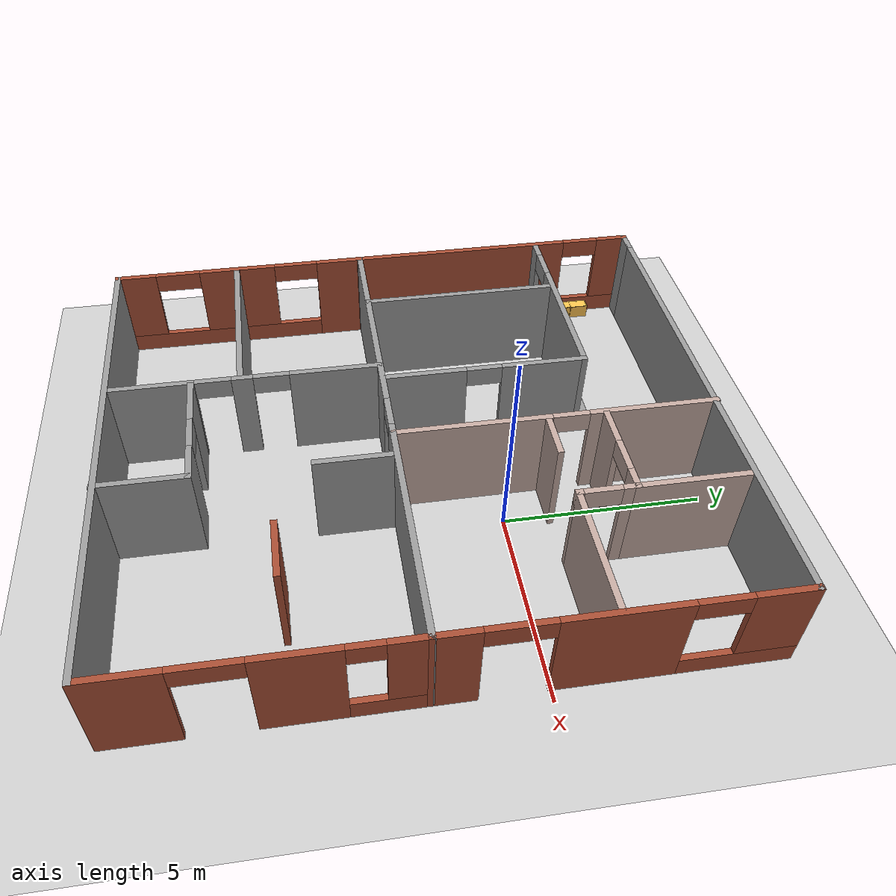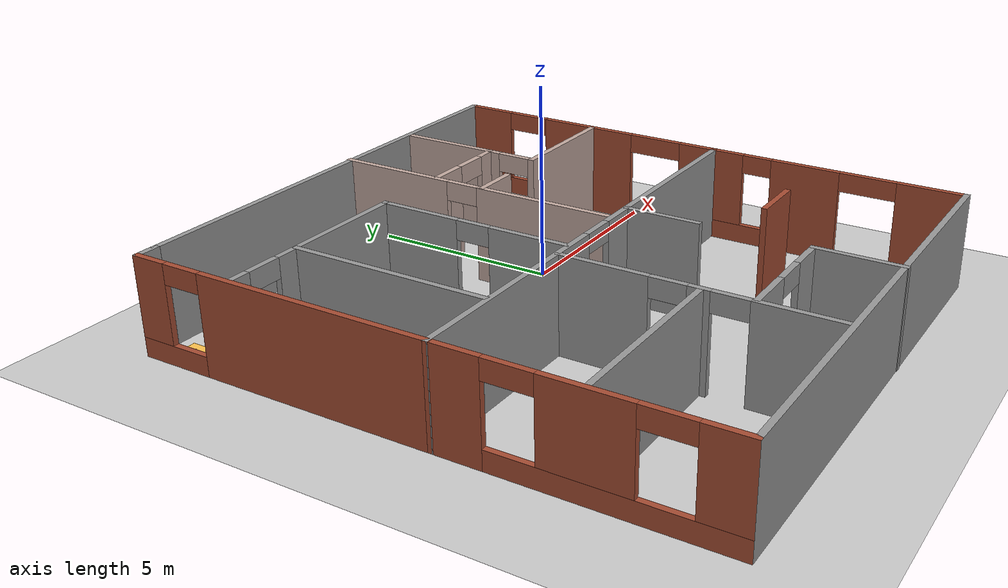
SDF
<sdf version="1.6">
 <world name="default">
  <model name="ground_plane">
   <static>1</static>
   <link name="link">
    <collision name="collision">
     <geometry><plane><normal>0 0 1</normal><size>100 100</size></plane></geometry>
     <surface>
      <contact><collide_bitmask>65535</collide_bitmask></contact>
      <friction><ode><mu>100</mu><mu2>50</mu2></ode></friction>
     </surface>
    </collision>
    <visual name="visual">
     <cast_shadows>0</cast_shadows>
     <geometry><plane><normal>0 0 1</normal><size>100 100</size></plane></geometry>
     <material>
      <script><uri>file://media/materials/scripts/gazebo.material</uri><name>Gazebo/Grey</name></script>
     </material>
    </visual>
   </link>
  </model>
  <model name="floor_plan">
   <pose>-1.7957 -2.03382 -0.009377 0 -0 0</pose>
   <link name="Wall_0">
    <pose>0 -0.539534 0 0 -0 3.14039</pose>
    <visual name="Wall_0_Visual_0">
     <pose>-3.50083 0 1.25 0 -0 0</pose>
     <geometry><box><size>5.99834 0.15 2.5</size></box></geometry>
     <material>
      <script><uri>file://media/materials/scripts/gazebo.material</uri><name>Gazebo/Grey</name></script>
      <ambient>1 1 1 1</ambient>
     </material>
     <meta><layer>0</layer></meta>
    </visual>
    <collision name="Wall_0_Collision_0">
     <geometry><box><size>5.99834 0.15 2.5</size></box></geometry>
     <pose>-3.50083 0 1.25 0 -0 0</pose>
    </collision>
    <visual name="Wall_0_Visual_1">
     <pose>3.44917 0 1.25 0 -0 0</pose>
     <geometry><box><size>6.10166 0.15 2.5</size></box></geometry>
     <material>
      <script><uri>file://media/materials/scripts/gazebo.material</uri><name>Gazebo/Grey</name></script>
      <ambient>1 1 1 1</ambient>
     </material>
     <meta><layer>0</layer></meta>
    </visual>
    <collision name="Wall_0_Collision_1">
     <geometry><box><size>6.10166 0.15 2.5</size></box></geometry>
     <pose>3.44917 0 1.25 0 -0 0</pose>
    </collision>
    <visual name="Wall_0_Visual_2">
     <pose>-0.051658 0 2.25 0 -0 0</pose>
     <geometry><box><size>0.9 0.15 0.5</size></box></geometry>
     <material>
      <script><uri>file://media/materials/scripts/gazebo.material</uri><name>Gazebo/Grey</name></script>
      <ambient>1 1 1 1</ambient>
     </material>
     <meta><layer>0</layer></meta>
    </visual>
    <collision name="Wall_0_Collision_2">
     <geometry><box><size>0.9 0.15 0.5</size></box></geometry>
     <pose>-0.051658 0 2.25 0 -0 0</pose>
    </collision>
   </link>
   <link name="Wall_11">
    <collision name="Wall_11_Collision">
     <geometry><box><size>2 0.15 2.5</size></box></geometry>
     <pose>0 0 1.25 0 -0 0</pose>
    </collision>
    <visual name="Wall_11_Visual">
     <pose>0 0 1.25 0 -0 0</pose>
     <geometry><box><size>2 0.15 2.5</size></box></geometry>
     <material>
      <script><uri>file://media/materials/scripts/gazebo.material</uri><name>Gazebo/Grey</name></script>
      <ambient>1 1 1 1</ambient>
     </material>
     <meta><layer>0</layer></meta>
    </visual>
    <pose>1.48948 -1.49915 0 0 0 -1.5708</pose>
   </link>
   <link name="Wall_13">
    <collision name="Wall_13_Collision">
     <geometry><box><size>1.5 0.15 2.5</size></box></geometry>
     <pose>0 0 1.25 0 -0 0</pose>
    </collision>
    <visual name="Wall_13_Visual">
     <pose>0 0 1.25 0 -0 0</pose>
     <geometry><box><size>1.5 0.15 2.5</size></box></geometry>
     <material>
      <script><uri>file://media/materials/scripts/gazebo.material</uri><name>Gazebo/Bricks</name></script>
      <ambient>1 1 1 1</ambient>
     </material>
     <meta><layer>0</layer></meta>
    </visual>
    <pose>3.82409 -3.40918 0 0 -0 0</pose>
   </link>
   <link name="Wall_15">
    <collision name="Wall_15_Collision">
     <geometry><box><size>4.75 0.15 2.5</size></box></geometry>
     <pose>0 0 1.25 0 -0 0</pose>
    </collision>
    <visual name="Wall_15_Visual">
     <pose>0 0 1.25 0 -0 0</pose>
     <geometry><box><size>4.75 0.15 2.5</size></box></geometry>
     <material>
      <script><uri>file://media/materials/scripts/gazebo.material</uri><name>Gazebo/Grey</name></script>
      <ambient>1 1 1 1</ambient>
     </material>
     <meta><layer>0</layer></meta>
    </visual>
    <pose>-3.97817 -4.0327 0 0 -0 3.14159</pose>
   </link>
   <link name="Wall_2">
    <pose>-6.42506 -3.93398 0 0 0 -1.5708</pose>
    <visual name="Wall_2_Visual_0">
     <pose>-2.80871 0 1.25 0 -0 0</pose>
     <geometry><box><size>1.30653 0.15 2.5</size></box></geometry>
     <material>
      <script><uri>file://media/materials/scripts/gazebo.material</uri><name>Gazebo/Bricks</name></script>
      <ambient>1 1 1 1</ambient>
     </material>
     <meta><layer>0</layer></meta>
    </visual>
    <collision name="Wall_2_Collision_0">
     <geometry><box><size>1.30653 0.15 2.5</size></box></geometry>
     <pose>-2.80871 0 1.25 0 -0 0</pose>
    </collision>
    <visual name="Wall_2_Visual_1">
     <pose>0.653263 0 0.25 0 -0 0</pose>
     <geometry><box><size>5.61743 0.15 0.5</size></box></geometry>
     <material>
      <script><uri>file://media/materials/scripts/gazebo.material</uri><name>Gazebo/Bricks</name></script>
      <ambient>1 1 1 1</ambient>
     </material>
     <meta><layer>0</layer></meta>
    </visual>
    <collision name="Wall_2_Collision_1">
     <geometry><box><size>5.61743 0.15 0.5</size></box></geometry>
     <pose>0.653263 0 0.25 0 -0 0</pose>
    </collision>
    <visual name="Wall_2_Visual_2">
     <pose>0.095441 0 1.5 0 -0 0</pose>
     <geometry><box><size>2.10179 0.15 2</size></box></geometry>
     <material>
      <script><uri>file://media/materials/scripts/gazebo.material</uri><name>Gazebo/Bricks</name></script>
      <ambient>1 1 1 1</ambient>
     </material>
     <meta><layer>0</layer></meta>
    </visual>
    <collision name="Wall_2_Collision_2">
     <geometry><box><size>2.10179 0.15 2</size></box></geometry>
     <pose>0.095441 0 1.5 0 -0 0</pose>
    </collision>
    <visual name="Wall_2_Visual_3">
     <pose>2.90416 0 1.5 0 -0 0</pose>
     <geometry><box><size>1.11564 0.15 2</size></box></geometry>
     <material>
      <script><uri>file://media/materials/scripts/gazebo.material</uri><name>Gazebo/Bricks</name></script>
      <ambient>1 1 1 1</ambient>
     </material>
     <meta><layer>0</layer></meta>
    </visual>
    <collision name="Wall_2_Collision_3">
     <geometry><box><size>1.11564 0.15 2</size></box></geometry>
     <pose>2.90416 0 1.5 0 -0 0</pose>
    </collision>
    <visual name="Wall_2_Visual_4">
     <pose>-1.55545 0 2.25 0 -0 0</pose>
     <geometry><box><size>1.2 0.15 0.5</size></box></geometry>
     <material>
      <script><uri>file://media/materials/scripts/gazebo.material</uri><name>Gazebo/Bricks</name></script>
      <ambient>1 1 1 1</ambient>
     </material>
     <meta><layer>0</layer></meta>
    </visual>
    <collision name="Wall_2_Collision_4">
     <geometry><box><size>1.2 0.15 0.5</size></box></geometry>
     <pose>-1.55545 0 2.25 0 -0 0</pose>
    </collision>
    <visual name="Wall_2_Visual_5">
     <pose>1.74633 0 2.25 0 -0 0</pose>
     <geometry><box><size>1.2 0.15 0.5</size></box></geometry>
     <material>
      <script><uri>file://media/materials/scripts/gazebo.material</uri><name>Gazebo/Bricks</name></script>
      <ambient>1 1 1 1</ambient>
     </material>
     <meta><layer>0</layer></meta>
    </visual>
    <collision name="Wall_2_Collision_5">
     <geometry><box><size>1.2 0.15 0.5</size></box></geometry>
     <pose>1.74633 0 2.25 0 -0 0</pose>
    </collision>
   </link>
   <link name="Wall_3">
    <collision name="Wall_3_Collision">
     <geometry><box><size>13 0.15 2.5</size></box></geometry>
     <pose>0 0 1.25 0 -0 0</pose>
    </collision>
    <visual name="Wall_3_Visual">
     <pose>0 0 1.25 0 -0 0</pose>
     <geometry><box><size>13 0.15 2.5</size></box></geometry>
     <material>
      <script><uri>file://media/materials/scripts/gazebo.material</uri><name>Gazebo/Grey</name></script>
      <ambient>1 1 1 1</ambient>
     </material>
     <meta><layer>0</layer></meta>
    </visual>
    <pose>0 -7.32112 0 0 0 -2.4e-05</pose>
   </link>
   <link name="Wall_36">
    <pose>-1.17934 2.06051 0 0 -0 1.5708</pose>
    <visual name="Wall_36_Visual_0">
     <pose>-1.55306 0 1.25 0 -0 0</pose>
     <geometry><box><size>2.14389 0.15 2.5</size></box></geometry>
     <material>
      <script><uri>file://media/materials/scripts/gazebo.material</uri><name>Gazebo/Grey</name></script>
      <ambient>1 1 1 1</ambient>
     </material>
     <meta><layer>0</layer></meta>
    </visual>
    <collision name="Wall_36_Collision_0">
     <geometry><box><size>2.14389 0.15 2.5</size></box></geometry>
     <pose>-1.55306 0 1.25 0 -0 0</pose>
    </collision>
    <visual name="Wall_36_Visual_1">
     <pose>1.52195 0 1.25 0 -0 0</pose>
     <geometry><box><size>2.20611 0.15 2.5</size></box></geometry>
     <material>
      <script><uri>file://media/materials/scripts/gazebo.material</uri><name>Gazebo/Grey</name></script>
      <ambient>1 1 1 1</ambient>
     </material>
     <meta><layer>0</layer></meta>
    </visual>
    <collision name="Wall_36_Collision_1">
     <geometry><box><size>2.20611 0.15 2.5</size></box></geometry>
     <pose>1.52195 0 1.25 0 -0 0</pose>
    </collision>
    <visual name="Wall_36_Visual_2">
     <pose>-0.031111 0 2.25 0 -0 0</pose>
     <geometry><box><size>0.9 0.15 0.5</size></box></geometry>
     <material>
      <script><uri>file://media/materials/scripts/gazebo.material</uri><name>Gazebo/Grey</name></script>
      <ambient>1 1 1 1</ambient>
     </material>
     <meta><layer>0</layer></meta>
    </visual>
    <collision name="Wall_36_Collision_2">
     <geometry><box><size>0.9 0.15 0.5</size></box></geometry>
     <pose>-0.031111 0 2.25 0 -0 0</pose>
    </collision>
   </link>
   <link name="Wall_37">
    <pose>-3.72933 4.61051 0 0 -0 3.14159</pose>
    <visual name="Wall_37_Visual_0">
     <pose>-0.694741 0 1.25 0 -0 0</pose>
     <geometry><box><size>3.86052 0.15 2.5</size></box></geometry>
     <material>
      <script><uri>file://media/materials/scripts/gazebo.material</uri><name>Gazebo/Grey</name></script>
      <ambient>1 1 1 1</ambient>
     </material>
     <meta><layer>0</layer></meta>
    </visual>
    <collision name="Wall_37_Collision_0">
     <geometry><box><size>3.86052 0.15 2.5</size></box></geometry>
     <pose>-0.694741 0 1.25 0 -0 0</pose>
    </collision>
    <visual name="Wall_37_Visual_1">
     <pose>2.38026 0 1.25 0 -0 0</pose>
     <geometry><box><size>0.489482 0.15 2.5</size></box></geometry>
     <material>
      <script><uri>file://media/materials/scripts/gazebo.material</uri><name>Gazebo/Grey</name></script>
      <ambient>1 1 1 1</ambient>
     </material>
     <meta><layer>0</layer></meta>
    </visual>
    <collision name="Wall_37_Collision_1">
     <geometry><box><size>0.489482 0.15 2.5</size></box></geometry>
     <pose>2.38026 0 1.25 0 -0 0</pose>
    </collision>
    <visual name="Wall_37_Visual_2">
     <pose>1.68552 0 2.25 0 -0 0</pose>
     <geometry><box><size>0.9 0.15 0.5</size></box></geometry>
     <material>
      <script><uri>file://media/materials/scripts/gazebo.material</uri><name>Gazebo/Grey</name></script>
      <ambient>1 1 1 1</ambient>
     </material>
     <meta><layer>0</layer></meta>
    </visual>
    <collision name="Wall_37_Collision_2">
     <geometry><box><size>0.9 0.15 0.5</size></box></geometry>
     <pose>1.68552 0 2.25 0 -0 0</pose>
    </collision>
   </link>
   <link name="Wall_39">
    <collision name="Wall_39_Collision">
     <geometry><box><size>5.25 0.15 2.5</size></box></geometry>
     <pose>0 0 1.25 0 -0 0</pose>
    </collision>
    <visual name="Wall_39_Visual">
     <pose>0 0 1.25 0 -0 0</pose>
     <geometry><box><size>5.25 0.15 2.5</size></box></geometry>
     <material>
      <script><uri>file://media/materials/scripts/gazebo.material</uri><name>Gazebo/Grey</name></script>
      <ambient>1 1 1 1</ambient>
     </material>
     <meta><layer>0</layer></meta>
    </visual>
    <pose>-4.34796 2.03294 0 0 0 -1.5708</pose>
   </link>
   <link name="Wall_4">
    <pose>6.42506 -3.93427 0 0 -0 1.5708</pose>
    <visual name="Wall_4_Visual_0">
     <pose>-2.56147 0 1.25 0 -0 0</pose>
     <geometry><box><size>1.80105 0.15 2.5</size></box></geometry>
     <material>
      <script><uri>file://media/materials/scripts/gazebo.material</uri><name>Gazebo/Bricks</name></script>
      <ambient>1 1 1 1</ambient>
     </material>
     <meta><layer>0</layer></meta>
    </visual>
    <collision name="Wall_4_Collision_0">
     <geometry><box><size>1.80105 0.15 2.5</size></box></geometry>
     <pose>-2.56147 0 1.25 0 -0 0</pose>
    </collision>
    <visual name="Wall_4_Visual_1">
     <pose>0.775723 0 1.25 0 -0 0</pose>
     <geometry><box><size>1.87334 0.15 2.5</size></box></geometry>
     <material>
      <script><uri>file://media/materials/scripts/gazebo.material</uri><name>Gazebo/Bricks</name></script>
      <ambient>1 1 1 1</ambient>
     </material>
     <meta><layer>0</layer></meta>
    </visual>
    <collision name="Wall_4_Collision_1">
     <geometry><box><size>1.87334 0.15 2.5</size></box></geometry>
     <pose>0.775723 0 1.25 0 -0 0</pose>
    </collision>
    <visual name="Wall_4_Visual_2">
     <pose>2.5872 0 0.25 0 -0 0</pose>
     <geometry><box><size>1.74961 0.15 0.5</size></box></geometry>
     <material>
      <script><uri>file://media/materials/scripts/gazebo.material</uri><name>Gazebo/Bricks</name></script>
      <ambient>1 1 1 1</ambient>
     </material>
     <meta><layer>0</layer></meta>
    </visual>
    <collision name="Wall_4_Collision_2">
     <geometry><box><size>1.74961 0.15 0.5</size></box></geometry>
     <pose>2.5872 0 0.25 0 -0 0</pose>
    </collision>
    <visual name="Wall_4_Visual_3">
     <pose>2.9872 0 1.5 0 -0 0</pose>
     <geometry><box><size>0.949605 0.15 2</size></box></geometry>
     <material>
      <script><uri>file://media/materials/scripts/gazebo.material</uri><name>Gazebo/Bricks</name></script>
      <ambient>1 1 1 1</ambient>
     </material>
     <meta><layer>0</layer></meta>
    </visual>
    <collision name="Wall_4_Collision_3">
     <geometry><box><size>0.949605 0.15 2</size></box></geometry>
     <pose>2.9872 0 1.5 0 -0 0</pose>
    </collision>
    <visual name="Wall_4_Visual_4">
     <pose>-0.910948 0 2.25 0 -0 0</pose>
     <geometry><box><size>1.5 0.15 0.5</size></box></geometry>
     <material>
      <script><uri>file://media/materials/scripts/gazebo.material</uri><name>Gazebo/Bricks</name></script>
      <ambient>1 1 1 1</ambient>
     </material>
     <meta><layer>0</layer></meta>
    </visual>
    <collision name="Wall_4_Collision_4">
     <geometry><box><size>1.5 0.15 0.5</size></box></geometry>
     <pose>-0.910948 0 2.25 0 -0 0</pose>
    </collision>
    <visual name="Wall_4_Visual_5">
     <pose>2.11239 0 2.25 0 -0 0</pose>
     <geometry><box><size>0.8 0.15 0.5</size></box></geometry>
     <material>
      <script><uri>file://media/materials/scripts/gazebo.material</uri><name>Gazebo/Bricks</name></script>
      <ambient>1 1 1 1</ambient>
     </material>
     <meta><layer>0</layer></meta>
    </visual>
    <collision name="Wall_4_Collision_5">
     <geometry><box><size>0.8 0.15 0.5</size></box></geometry>
     <pose>2.11239 0 2.25 0 -0 0</pose>
    </collision>
   </link>
   <link name="Wall_45">
    <pose>6.425 3.37786 0 0 -0 1.57081</pose>
    <visual name="Wall_45_Visual_0">
     <pose>-3.45923 0 1.25 0 -0 0</pose>
     <geometry><box><size>1.08155 0.15 2.5</size></box></geometry>
     <material>
      <script><uri>file://media/materials/scripts/gazebo.material</uri><name>Gazebo/Bricks</name></script>
      <ambient>1 1 1 1</ambient>
     </material>
     <meta><layer>0</layer></meta>
    </visual>
    <collision name="Wall_45_Collision_0">
     <geometry><box><size>1.08155 0.15 2.5</size></box></geometry>
     <pose>-3.45923 0 1.25 0 -0 0</pose>
    </collision>
    <visual name="Wall_45_Visual_1">
     <pose>-0.023066 0 1.25 0 -0 0</pose>
     <geometry><box><size>2.79077 0.15 2.5</size></box></geometry>
     <material>
      <script><uri>file://media/materials/scripts/gazebo.material</uri><name>Gazebo/Bricks</name></script>
      <ambient>1 1 1 1</ambient>
     </material>
     <meta><layer>0</layer></meta>
    </visual>
    <collision name="Wall_45_Collision_1">
     <geometry><box><size>2.79077 0.15 2.5</size></box></geometry>
     <pose>-0.023066 0 1.25 0 -0 0</pose>
    </collision>
    <visual name="Wall_45_Visual_2">
     <pose>2.68616 0 0.25 0 -0 0</pose>
     <geometry><box><size>2.62768 0.15 0.5</size></box></geometry>
     <material>
      <script><uri>file://media/materials/scripts/gazebo.material</uri><name>Gazebo/Bricks</name></script>
      <ambient>1 1 1 1</ambient>
     </material>
     <meta><layer>0</layer></meta>
    </visual>
    <collision name="Wall_45_Collision_2">
     <geometry><box><size>2.62768 0.15 0.5</size></box></geometry>
     <pose>2.68616 0 0.25 0 -0 0</pose>
    </collision>
    <visual name="Wall_45_Visual_3">
     <pose>3.28616 0 1.5 0 -0 0</pose>
     <geometry><box><size>1.42768 0.15 2</size></box></geometry>
     <material>
      <script><uri>file://media/materials/scripts/gazebo.material</uri><name>Gazebo/Bricks</name></script>
      <ambient>1 1 1 1</ambient>
     </material>
     <meta><layer>0</layer></meta>
    </visual>
    <collision name="Wall_45_Collision_3">
     <geometry><box><size>1.42768 0.15 2</size></box></geometry>
     <pose>3.28616 0 1.5 0 -0 0</pose>
    </collision>
    <visual name="Wall_45_Visual_4">
     <pose>-2.16845 0 2.25 0 -0 0</pose>
     <geometry><box><size>1.5 0.15 0.5</size></box></geometry>
     <material>
      <script><uri>file://media/materials/scripts/gazebo.material</uri><name>Gazebo/Bricks</name></script>
      <ambient>1 1 1 1</ambient>
     </material>
     <meta><layer>0</layer></meta>
    </visual>
    <collision name="Wall_45_Collision_4">
     <geometry><box><size>1.5 0.15 0.5</size></box></geometry>
     <pose>-2.16845 0 2.25 0 -0 0</pose>
    </collision>
    <visual name="Wall_45_Visual_5">
     <pose>1.97232 0 2.25 0 -0 0</pose>
     <geometry><box><size>1.2 0.15 0.5</size></box></geometry>
     <material>
      <script><uri>file://media/materials/scripts/gazebo.material</uri><name>Gazebo/Bricks</name></script>
      <ambient>1 1 1 1</ambient>
     </material>
     <meta><layer>0</layer></meta>
    </visual>
    <collision name="Wall_45_Collision_5">
     <geometry><box><size>1.2 0.15 0.5</size></box></geometry>
     <pose>1.97232 0 2.25 0 -0 0</pose>
    </collision>
   </link>
   <link name="Wall_46">
    <collision name="Wall_46_Collision">
     <geometry><box><size>12.5 0.15 2.5</size></box></geometry>
     <pose>0 0 1.25 0 -0 0</pose>
    </collision>
    <visual name="Wall_46_Visual">
     <pose>0 0 1.25 0 -0 0</pose>
     <geometry><box><size>12.5 0.15 2.5</size></box></geometry>
     <material>
      <script><uri>file://media/materials/scripts/gazebo.material</uri><name>Gazebo/Grey</name></script>
      <ambient>1 1 1 1</ambient>
     </material>
     <meta><layer>0</layer></meta>
    </visual>
    <pose>0.249944 7.303 0 0 -0 3.14159</pose>
   </link>
   <link name="Wall_48">
    <pose>-6.42506 3.378 0 0 -0 1.5708</pose>
    <visual name="Wall_48_Visual_0">
     <pose>-0.956686 0 1.25 0 -0 0</pose>
     <geometry><box><size>6.08663 0.15 2.5</size></box></geometry>
     <material>
      <script><uri>file://media/materials/scripts/gazebo.material</uri><name>Gazebo/Bricks</name></script>
      <ambient>1 1 1 1</ambient>
     </material>
     <meta><layer>0</layer></meta>
    </visual>
    <collision name="Wall_48_Collision_0">
     <geometry><box><size>6.08663 0.15 2.5</size></box></geometry>
     <pose>-0.956686 0 1.25 0 -0 0</pose>
    </collision>
    <visual name="Wall_48_Visual_1">
     <pose>3.04331 0 0.25 0 -0 0</pose>
     <geometry><box><size>1.91337 0.15 0.5</size></box></geometry>
     <material>
      <script><uri>file://media/materials/scripts/gazebo.material</uri><name>Gazebo/Bricks</name></script>
      <ambient>1 1 1 1</ambient>
     </material>
     <meta><layer>0</layer></meta>
    </visual>
    <collision name="Wall_48_Collision_1">
     <geometry><box><size>1.91337 0.15 0.5</size></box></geometry>
     <pose>3.04331 0 0.25 0 -0 0</pose>
    </collision>
    <visual name="Wall_48_Visual_2">
     <pose>3.54331 0 1.5 0 -0 0</pose>
     <geometry><box><size>0.913372 0.15 2</size></box></geometry>
     <material>
      <script><uri>file://media/materials/scripts/gazebo.material</uri><name>Gazebo/Bricks</name></script>
      <ambient>1 1 1 1</ambient>
     </material>
     <meta><layer>0</layer></meta>
    </visual>
    <collision name="Wall_48_Collision_2">
     <geometry><box><size>0.913372 0.15 2</size></box></geometry>
     <pose>3.54331 0 1.5 0 -0 0</pose>
    </collision>
    <visual name="Wall_48_Visual_3">
     <pose>2.58663 0 2.25 0 -0 0</pose>
     <geometry><box><size>1 0.15 0.5</size></box></geometry>
     <material>
      <script><uri>file://media/materials/scripts/gazebo.material</uri><name>Gazebo/Bricks</name></script>
      <ambient>1 1 1 1</ambient>
     </material>
     <meta><layer>0</layer></meta>
    </visual>
    <collision name="Wall_48_Collision_3">
     <geometry><box><size>1 0.15 0.5</size></box></geometry>
     <pose>2.58663 0 2.25 0 -0 0</pose>
    </collision>
   </link>
   <link name="Wall_49">
    <collision name="Wall_49_Collision">
     <geometry><box><size>0.65 0.15 2.5</size></box></geometry>
     <pose>0 0 1.25 0 -0 0</pose>
    </collision>
    <visual name="Wall_49_Visual">
     <pose>0 0 1.25 0 -0 0</pose>
     <geometry><box><size>0.65 0.15 2.5</size></box></geometry>
     <material>
      <script><uri>file://media/materials/scripts/gazebo.material</uri><name>Gazebo/Grey</name></script>
      <ambient>1 1 1 1</ambient>
     </material>
     <meta><layer>0</layer></meta>
    </visual>
    <pose>-6.17506 7.303 0 0 -0 0</pose>
   </link>
   <link name="Wall_51">
    <pose>0.800151 3.41451 0 0 -0 1.5708</pose>
    <visual name="Wall_51_Visual_0">
     <pose>-2.06358 0 1.25 0 -0 0</pose>
     <geometry><box><size>3.87284 0.15 2.5</size></box></geometry>
     <material>
      <script><uri>file://media/materials/scripts/gazebo.material</uri><name>Gazebo/Grey</name></script>
      <ambient>0.760784 0.662745 0.627451 1</ambient>
     </material>
     <meta><layer>0</layer></meta>
    </visual>
    <collision name="Wall_51_Collision_0">
     <geometry><box><size>3.87284 0.15 2.5</size></box></geometry>
     <pose>-2.06358 0 1.25 0 -0 0</pose>
    </collision>
    <visual name="Wall_51_Visual_1">
     <pose>2.38642 0 1.25 0 -0 0</pose>
     <geometry><box><size>3.22716 0.15 2.5</size></box></geometry>
     <material>
      <script><uri>file://media/materials/scripts/gazebo.material</uri><name>Gazebo/Grey</name></script>
      <ambient>0.760784 0.662745 0.627451 1</ambient>
     </material>
     <meta><layer>0</layer></meta>
    </visual>
    <collision name="Wall_51_Collision_1">
     <geometry><box><size>3.22716 0.15 2.5</size></box></geometry>
     <pose>2.38642 0 1.25 0 -0 0</pose>
    </collision>
    <visual name="Wall_51_Visual_2">
     <pose>0.322836 0 2.25 0 -0 0</pose>
     <geometry><box><size>0.9 0.15 0.5</size></box></geometry>
     <material>
      <script><uri>file://media/materials/scripts/gazebo.material</uri><name>Gazebo/Grey</name></script>
      <ambient>0.760784 0.662745 0.627451 1</ambient>
     </material>
     <meta><layer>0</layer></meta>
    </visual>
    <collision name="Wall_51_Collision_2">
     <geometry><box><size>0.9 0.15 0.5</size></box></geometry>
     <pose>0.322836 0 2.25 0 -0 0</pose>
    </collision>
   </link>
   <link name="Wall_53">
    <pose>2.06768 4.57778 0 0 -0 0</pose>
    <visual name="Wall_53_Visual_0">
     <pose>-0.747106 0 1.25 0 -0 0</pose>
     <geometry><box><size>1.00579 0.15 2.5</size></box></geometry>
     <material>
      <script><uri>file://media/materials/scripts/gazebo.material</uri><name>Gazebo/Grey</name></script>
      <ambient>0.760784 0.662745 0.627451 1</ambient>
     </material>
     <meta><layer>0</layer></meta>
    </visual>
    <collision name="Wall_53_Collision_0">
     <geometry><box><size>1.00579 0.15 2.5</size></box></geometry>
     <pose>-0.747106 0 1.25 0 -0 0</pose>
    </collision>
    <visual name="Wall_53_Visual_1">
     <pose>0.952894 0 1.25 0 -0 0</pose>
     <geometry><box><size>0.594213 0.15 2.5</size></box></geometry>
     <material>
      <script><uri>file://media/materials/scripts/gazebo.material</uri><name>Gazebo/Grey</name></script>
      <ambient>0.760784 0.662745 0.627451 1</ambient>
     </material>
     <meta><layer>0</layer></meta>
    </visual>
    <collision name="Wall_53_Collision_1">
     <geometry><box><size>0.594213 0.15 2.5</size></box></geometry>
     <pose>0.952894 0 1.25 0 -0 0</pose>
    </collision>
    <visual name="Wall_53_Visual_2">
     <pose>0.205787 0 2.25 0 -0 0</pose>
     <geometry><box><size>0.9 0.15 0.5</size></box></geometry>
     <material>
      <script><uri>file://media/materials/scripts/gazebo.material</uri><name>Gazebo/Grey</name></script>
      <ambient>0.760784 0.662745 0.627451 1</ambient>
     </material>
     <meta><layer>0</layer></meta>
    </visual>
    <collision name="Wall_53_Collision_2">
     <geometry><box><size>0.9 0.15 0.5</size></box></geometry>
     <pose>0.205787 0 2.25 0 -0 0</pose>
    </collision>
   </link>
   <link name="Wall_54">
    <collision name="Wall_54_Collision">
     <geometry><box><size>2.75 0.15 2.5</size></box></geometry>
     <pose>0 0 1.25 0 -0 0</pose>
    </collision>
    <visual name="Wall_54_Visual">
     <pose>0 0 1.25 0 -0 0</pose>
     <geometry><box><size>2.75 0.15 2.5</size></box></geometry>
     <material>
      <script><uri>file://media/materials/scripts/gazebo.material</uri><name>Gazebo/Grey</name></script>
      <ambient>0.760784 0.662745 0.627451 1</ambient>
     </material>
     <meta><layer>0</layer></meta>
    </visual>
    <pose>3.24268 5.87778 0 0 -0 1.5708</pose>
   </link>
   <link name="Wall_56">
    <pose>3.24268 3.90278 0 0 0 -1.5708</pose>
    <visual name="Wall_56_Visual_0">
     <pose>-0.543058 0 1.25 0 -0 0</pose>
     <geometry><box><size>0.413884 0.15 2.5</size></box></geometry>
     <material>
      <script><uri>file://media/materials/scripts/gazebo.material</uri><name>Gazebo/Grey</name></script>
      <ambient>0.760784 0.662745 0.627451 1</ambient>
     </material>
     <meta><layer>0</layer></meta>
    </visual>
    <collision name="Wall_56_Collision_0">
     <geometry><box><size>0.413884 0.15 2.5</size></box></geometry>
     <pose>-0.543058 0 1.25 0 -0 0</pose>
    </collision>
    <visual name="Wall_56_Visual_1">
     <pose>0.656942 0 1.25 0 -0 0</pose>
     <geometry><box><size>0.186116 0.15 2.5</size></box></geometry>
     <material>
      <script><uri>file://media/materials/scripts/gazebo.material</uri><name>Gazebo/Grey</name></script>
      <ambient>0.760784 0.662745 0.627451 1</ambient>
     </material>
     <meta><layer>0</layer></meta>
    </visual>
    <collision name="Wall_56_Collision_1">
     <geometry><box><size>0.186116 0.15 2.5</size></box></geometry>
     <pose>0.656942 0 1.25 0 -0 0</pose>
    </collision>
    <visual name="Wall_56_Visual_2">
     <pose>0.113884 0 2.25 0 -0 0</pose>
     <geometry><box><size>0.9 0.15 0.5</size></box></geometry>
     <material>
      <script><uri>file://media/materials/scripts/gazebo.material</uri><name>Gazebo/Grey</name></script>
      <ambient>0.760784 0.662745 0.627451 1</ambient>
     </material>
     <meta><layer>0</layer></meta>
    </visual>
    <collision name="Wall_56_Collision_2">
     <geometry><box><size>0.9 0.15 0.5</size></box></geometry>
     <pose>0.113884 0 2.25 0 -0 0</pose>
    </collision>
   </link>
   <link name="Wall_57">
    <collision name="Wall_57_Collision">
     <geometry><box><size>3.25 0.15 2.5</size></box></geometry>
     <pose>0 0 1.25 0 -0 0</pose>
    </collision>
    <visual name="Wall_57_Visual">
     <pose>0 0 1.25 0 -0 0</pose>
     <geometry><box><size>3.25 0.15 2.5</size></box></geometry>
     <material>
      <script><uri>file://media/materials/scripts/gazebo.material</uri><name>Gazebo/Grey</name></script>
      <ambient>0.760784 0.662745 0.627451 1</ambient>
     </material>
     <meta><layer>0</layer></meta>
    </visual>
    <pose>4.79268 3.22778 0 0 -0 0</pose>
   </link>
   <link name="Wall_59">
    <collision name="Wall_59_Collision">
     <geometry><box><size>1.25 0.15 2.5</size></box></geometry>
     <pose>0 0 1.25 0 -0 0</pose>
    </collision>
    <visual name="Wall_59_Visual">
     <pose>0 0 1.25 0 -0 0</pose>
     <geometry><box><size>1.25 0.15 2.5</size></box></geometry>
     <material>
      <script><uri>file://media/materials/scripts/gazebo.material</uri><name>Gazebo/Grey</name></script>
      <ambient>0.760784 0.662745 0.627451 1</ambient>
     </material>
     <meta><layer>0</layer></meta>
    </visual>
    <pose>1.382 3.16183 0 0 -0 0</pose>
   </link>
   <link name="Wall_6">
    <pose>-1.67816 -3.87415 0 0 0 -1.5708</pose>
    <visual name="Wall_6_Visual_0">
     <pose>-2.21563 0 1.25 0 -0 0</pose>
     <geometry><box><size>2.31875 0.15 2.5</size></box></geometry>
     <material>
      <script><uri>file://media/materials/scripts/gazebo.material</uri><name>Gazebo/Grey</name></script>
      <ambient>1 1 1 1</ambient>
     </material>
     <meta><layer>0</layer></meta>
    </visual>
    <collision name="Wall_6_Collision_0">
     <geometry><box><size>2.31875 0.15 2.5</size></box></geometry>
     <pose>-2.21563 0 1.25 0 -0 0</pose>
    </collision>
    <visual name="Wall_6_Visual_1">
     <pose>0.110792 0 1.25 0 -0 0</pose>
     <geometry><box><size>0.534083 0.15 2.5</size></box></geometry>
     <material>
      <script><uri>file://media/materials/scripts/gazebo.material</uri><name>Gazebo/Grey</name></script>
      <ambient>1 1 1 1</ambient>
     </material>
     <meta><layer>0</layer></meta>
    </visual>
    <collision name="Wall_6_Collision_1">
     <geometry><box><size>0.534083 0.15 2.5</size></box></geometry>
     <pose>0.110792 0 1.25 0 -0 0</pose>
    </collision>
    <visual name="Wall_6_Visual_2">
     <pose>2.32642 0 1.25 0 -0 0</pose>
     <geometry><box><size>2.09717 0.15 2.5</size></box></geometry>
     <material>
      <script><uri>file://media/materials/scripts/gazebo.material</uri><name>Gazebo/Grey</name></script>
      <ambient>1 1 1 1</ambient>
     </material>
     <meta><layer>0</layer></meta>
    </visual>
    <collision name="Wall_6_Collision_2">
     <geometry><box><size>2.09717 0.15 2.5</size></box></geometry>
     <pose>2.32642 0 1.25 0 -0 0</pose>
    </collision>
    <visual name="Wall_6_Visual_3">
     <pose>-0.60625 0 2.25 0 -0 0</pose>
     <geometry><box><size>0.9 0.15 0.5</size></box></geometry>
     <material>
      <script><uri>file://media/materials/scripts/gazebo.material</uri><name>Gazebo/Grey</name></script>
      <ambient>1 1 1 1</ambient>
     </material>
     <meta><layer>0</layer></meta>
    </visual>
    <collision name="Wall_6_Collision_3">
     <geometry><box><size>0.9 0.15 0.5</size></box></geometry>
     <pose>-0.60625 0 2.25 0 -0 0</pose>
    </collision>
    <visual name="Wall_6_Visual_4">
     <pose>0.827833 0 2.25 0 -0 0</pose>
     <geometry><box><size>0.9 0.15 0.5</size></box></geometry>
     <material>
      <script><uri>file://media/materials/scripts/gazebo.material</uri><name>Gazebo/Grey</name></script>
      <ambient>1 1 1 1</ambient>
     </material>
     <meta><layer>0</layer></meta>
    </visual>
    <collision name="Wall_6_Collision_4">
     <geometry><box><size>0.9 0.15 0.5</size></box></geometry>
     <pose>0.827833 0 2.25 0 -0 0</pose>
    </collision>
   </link>
   <link name="Wall_8">
    <pose>-0.047711 -5.23951 0 0 -0 0</pose>
    <visual name="Wall_8_Visual_0">
     <pose>-0.96773 0 1.25 0 -0 0</pose>
     <geometry><box><size>1.31454 0.15 2.5</size></box></geometry>
     <material>
      <script><uri>file://media/materials/scripts/gazebo.material</uri><name>Gazebo/Grey</name></script>
      <ambient>1 1 1 1</ambient>
     </material>
     <meta><layer>0</layer></meta>
    </visual>
    <collision name="Wall_8_Collision_0">
     <geometry><box><size>1.31454 0.15 2.5</size></box></geometry>
     <pose>-0.96773 0 1.25 0 -0 0</pose>
    </collision>
    <visual name="Wall_8_Visual_1">
     <pose>1.10727 0 1.25 0 -0 0</pose>
     <geometry><box><size>1.03546 0.15 2.5</size></box></geometry>
     <material>
      <script><uri>file://media/materials/scripts/gazebo.material</uri><name>Gazebo/Grey</name></script>
      <ambient>1 1 1 1</ambient>
     </material>
     <meta><layer>0</layer></meta>
    </visual>
    <collision name="Wall_8_Collision_1">
     <geometry><box><size>1.03546 0.15 2.5</size></box></geometry>
     <pose>1.10727 0 1.25 0 -0 0</pose>
    </collision>
    <visual name="Wall_8_Visual_2">
     <pose>0.13954 0 2.25 0 -0 0</pose>
     <geometry><box><size>0.9 0.15 0.5</size></box></geometry>
     <material>
      <script><uri>file://media/materials/scripts/gazebo.material</uri><name>Gazebo/Grey</name></script>
      <ambient>1 1 1 1</ambient>
     </material>
     <meta><layer>0</layer></meta>
    </visual>
    <collision name="Wall_8_Collision_2">
     <geometry><box><size>0.9 0.15 0.5</size></box></geometry>
     <pose>0.13954 0 2.25 0 -0 0</pose>
    </collision>
   </link>
   <link name="Wall_9">
    <collision name="Wall_9_Collision">
     <geometry><box><size>2.25 0.15 2.5</size></box></geometry>
     <pose>0 0 1.25 0 -0 0</pose>
    </collision>
    <visual name="Wall_9_Visual">
     <pose>0 0 1.25 0 -0 0</pose>
     <geometry><box><size>2.25 0.15 2.5</size></box></geometry>
     <material>
      <script><uri>file://media/materials/scripts/gazebo.material</uri><name>Gazebo/Grey</name></script>
      <ambient>1 1 1 1</ambient>
     </material>
     <meta><layer>0</layer></meta>
    </visual>
    <pose>1.50229 -6.28951 0 0 0 -1.5708</pose>
   </link>
   <static>1</static>
  </model>
  <model name="wood_cube_10cm">
   <link name="link">
    <pose>0 0 0.05 0 -0 0</pose>
    <inertial>
     <mass>0.5167</mass>
     <inertia>
      <ixx>0.000861167</ixx>
      <ixy>0</ixy>
      <ixz>0</ixz>
      <iyy>0.000861167</iyy>
      <iyz>0</iyz>
      <izz>0.000861167</izz>
     </inertia>
    </inertial>
    <collision name="collision">
     <geometry><box><size>0.1 0.1 0.1</size></box></geometry>
     <surface>
      <contact>
       <poissons_ratio>0.347</poissons_ratio>
       <elastic_modulus>8.8e+09</elastic_modulus>
       <ode><kp>100000</kp><kd>100</kd><max_vel>100</max_vel><min_depth>0.001</min_depth></ode>
      </contact>
      <friction>
       <torsional>
        <coefficient>1</coefficient>
        <use_patch_radius>0</use_patch_radius>
        <surface_radius>0.01</surface_radius>
       </torsional>
      </friction>
     </surface>
    </collision>
    <visual name="visual">
     <geometry><box><size>0.1 0.1 0.1</size></box></geometry>
     <material>
      <script><uri>file://media/materials/scripts/gazebo.material</uri><name>Gazebo/Wood</name></script>
     </material>
    </visual>
   </link>
   <pose>-2.83744 0.651736 -0.001013 0 -0 0</pose>
  </model>
  <model name="Wall_Cabinet_36x15W_1">
   <link name="Wall_0">
    <pose>0 0 0.01 0 -0 0</pose>
    <inertial>
     <mass>1.9796</mass>
     <inertia><ixx>0.0145</ixx><iyy>0.1511</iyy><izz>0.1367</izz><ixy>0</ixy><ixz>0</ixz><iyz>0</iyz></inertia>
    </inertial>
    <collision name="Wall_0_Collision"><geometry><box><size>0.91 0.296 0.02</size></box></geometry></collision>
    <visual name="Wall_0_Visual">
     <geometry><box><size>0.91 0.296 0.02</size></box></geometry>
     <material>
      <script><uri>file://media/materials/scripts/gazebo.material</uri><name>Gazebo/Grey</name></script>
      <ambient>1 1 1 1</ambient>
     </material>
    </visual>
   </link>
   <joint name="0_2" type="fixed">
    <pose>-0.455 0 0 0 -0 0</pose>
    <parent>Wall_2</parent>
    <child>Wall_0</child>
    <axis>
     <xyz>0 0 1</xyz>
     <use_parent_model_frame>0</use_parent_model_frame>
     <limit><lower>-1e+16</lower><upper>1e+16</upper></limit>
    </axis>
   </joint>
   <joint name="0_4" type="fixed">
    <pose>0.455 0 0 0 -0 0</pose>
    <parent>Wall_4</parent>
    <child>Wall_0</child>
    <axis>
     <xyz>0 0 1</xyz>
     <use_parent_model_frame>0</use_parent_model_frame>
     <limit><lower>-1e+16</lower><upper>1e+16</upper></limit>
    </axis>
   </joint>
   <joint name="0_8" type="fixed">
    <pose>0 -0.148 0 0 -0 0</pose>
    <parent>Wall_8</parent>
    <child>Wall_0</child>
    <axis>
     <xyz>0 0 1</xyz>
     <use_parent_model_frame>0</use_parent_model_frame>
     <limit><lower>-1e+16</lower><upper>1e+16</upper></limit>
    </axis>
   </joint>
   <link name="Wall_2">
    <pose>-0.445 0 0.192 0 -0 0</pose>
    <inertial>
     <mass>0.8353</mass>
     <inertia><ixx>0.0061</ixx><iyy>0.0164</iyy><izz>0.0103</izz><ixy>0</ixy><ixz>0</ixz><iyz>0</iyz></inertia>
    </inertial>
    <collision name="Wall_2_Collision"><geometry><box><size>0.02 0.296 0.384</size></box></geometry></collision>
    <visual name="Wall_2_Visual">
     <geometry><box><size>0.02 0.296 0.384</size></box></geometry>
     <material>
      <script><uri>file://media/materials/scripts/gazebo.material</uri><name>Gazebo/Grey</name></script>
      <ambient>1 1 1 1</ambient>
     </material>
    </visual>
   </link>
   <link name="Wall_4">
    <pose>0.445 0 0.192 0 -0 0</pose>
    <inertial>
     <mass>0.8353</mass>
     <inertia><ixx>0.0061</ixx><iyy>0.0164</iyy><izz>0.0103</izz><ixy>0</ixy><ixz>0</ixz><iyz>0</iyz></inertia>
    </inertial>
    <collision name="Wall_4_Collision"><geometry><box><size>0.02 0.296 0.384</size></box></geometry></collision>
    <visual name="Wall_4_Visual">
     <geometry><box><size>0.02 0.296 0.384</size></box></geometry>
     <material>
      <script><uri>file://media/materials/scripts/gazebo.material</uri><name>Gazebo/Grey</name></script>
      <ambient>1 1 1 1</ambient>
     </material>
    </visual>
   </link>
   <link name="Wall_6">
    <pose>0 0 0.374 0 -0 0</pose>
    <inertial>
     <mass>1.9796</mass>
     <inertia><ixx>0.0145</ixx><iyy>0.1511</iyy><izz>0.1367</izz><ixy>0</ixy><ixz>0</ixz><iyz>0</iyz></inertia>
    </inertial>
    <collision name="Wall_6_Collision"><geometry><box><size>0.91 0.296 0.02</size></box></geometry></collision>
    <visual name="Wall_6_Visual">
     <geometry><box><size>0.91 0.296 0.02</size></box></geometry>
     <material>
      <script><uri>file://media/materials/scripts/gazebo.material</uri><name>Gazebo/Grey</name></script>
      <ambient>1 1 1 1</ambient>
     </material>
    </visual>
   </link>
   <joint name="6_2" type="fixed">
    <pose>-0.455 0 0 0 -0 0</pose>
    <parent>Wall_2</parent>
    <child>Wall_6</child>
    <axis>
     <xyz>0 0 1</xyz>
     <use_parent_model_frame>0</use_parent_model_frame>
     <limit><lower>-1e+16</lower><upper>1e+16</upper></limit>
    </axis>
   </joint>
   <joint name="6_4" type="fixed">
    <pose>0.455 0 0 0 -0 0</pose>
    <parent>Wall_4</parent>
    <child>Wall_6</child>
    <axis>
     <xyz>0 0 1</xyz>
     <use_parent_model_frame>0</use_parent_model_frame>
     <limit><lower>-1e+16</lower><upper>1e+16</upper></limit>
    </axis>
   </joint>
   <joint name="6_8" type="fixed">
    <pose>0 -0.148 0 0 -0 0</pose>
    <parent>Wall_8</parent>
    <child>Wall_6</child>
    <axis>
     <xyz>0 0 1</xyz>
     <use_parent_model_frame>0</use_parent_model_frame>
     <limit><lower>-1e+16</lower><upper>1e+16</upper></limit>
    </axis>
   </joint>
   <link name="Wall_8">
    <pose>0 -0.138 0.19 0 -0 0</pose>
    <inertial>
     <mass>2.5302</mass>
     <inertia><ixx>0.0305</ixx><iyy>0.1732</iyy><izz>0.2035</izz><ixy>0</ixy><ixz>0</ixz><iyz>0</iyz></inertia>
    </inertial>
    <collision name="Wall_8_Collision"><geometry><box><size>0.906 0.02 0.38</size></box></geometry></collision>
    <visual name="Wall_8_Visual">
     <geometry><box><size>0.906 0.02 0.38</size></box></geometry>
     <material>
      <script><uri>file://media/materials/scripts/gazebo.material</uri><name>Gazebo/Grey</name></script>
      <ambient>1 1 1 1</ambient>
     </material>
    </visual>
   </link>
   <joint name="8_2" type="fixed">
    <pose>-0.453 0 0 0 -0 0</pose>
    <parent>Wall_2</parent>
    <child>Wall_8</child>
    <axis>
     <xyz>0 1 0</xyz>
     <use_parent_model_frame>0</use_parent_model_frame>
     <limit><lower>-1e+16</lower><upper>1e+16</upper></limit>
    </axis>
   </joint>
   <joint name="8_4" type="fixed">
    <pose>0.453 0 0 0 -0 0</pose>
    <parent>Wall_4</parent>
    <child>Wall_8</child>
    <axis>
     <xyz>0 1 0</xyz>
     <use_parent_model_frame>0</use_parent_model_frame>
     <limit><lower>-1e+16</lower><upper>1e+16</upper></limit>
    </axis>
   </joint>
   <static>1</static>
   <pose>-3.42352 2.84692 0 0 -0 0</pose>
  </model>
  <model name="Wall_Cabinet_15x30">
   <pose>-7.95645 3.94434 0 0 -0 0</pose>
   <link name="Wall_0">
    <pose>0 0.374 0.192 0 -0 0</pose>
    <inertial>
     <mass>0.9882</mass>
     <inertia><ixx>0.0072</ixx><iyy>0.0194</iyy><izz>0.0122</izz><ixy>0</ixy><ixz>0</ixz><iyz>0</iyz></inertia>
    </inertial>
    <collision name="Wall_0_Collision"><geometry><box><size>0.296 0.02 0.384</size></box></geometry></collision>
    <visual name="Wall_0_Visual">
     <geometry><box><size>0.296 0.02 0.384</size></box></geometry>
     <material>
      <script><uri>file://media/materials/scripts/gazebo.material</uri><name>Gazebo/Grey</name></script>
      <ambient>1 0.764706 0.305882 1</ambient>
     </material>
    </visual>
   </link>
   <joint name="0_2" type="fixed">
    <pose>0 0 0.192 0 -0 0</pose>
    <parent>Wall_2</parent>
    <child>Wall_0</child>
    <axis>
     <xyz>0 0 1</xyz>
     <use_parent_model_frame>0</use_parent_model_frame>
     <limit><lower>-1e+16</lower><upper>1e+16</upper></limit>
    </axis>
   </joint>
   <joint name="0_4" type="fixed">
    <pose>0 0 -0.192 0 -0 0</pose>
    <parent>Wall_4</parent>
    <child>Wall_0</child>
    <axis>
     <xyz>0 0 1</xyz>
     <use_parent_model_frame>0</use_parent_model_frame>
     <limit><lower>-1e+16</lower><upper>1e+16</upper></limit>
    </axis>
   </joint>
   <joint name="0_15" type="fixed">
    <pose>0.148 0 0 0 -0 0</pose>
    <parent>Wall_15</parent>
    <child>Wall_0</child>
    <axis>
     <xyz>1 0 0</xyz>
     <use_parent_model_frame>0</use_parent_model_frame>
     <limit><lower>-1e+16</lower><upper>1e+16</upper></limit>
    </axis>
   </joint>
   <link name="Wall_11">
    <pose>0 -0.132768 0.192 0 -0 0</pose>
    <inertial>
     <mass>0.9882</mass>
     <inertia><ixx>0.0072</ixx><iyy>0.0194</iyy><izz>0.0122</izz><ixy>0</ixy><ixz>0</ixz><iyz>0</iyz></inertia>
    </inertial>
    <collision name="Wall_11_Collision"><geometry><box><size>0.296 0.02 0.384</size></box></geometry></collision>
    <visual name="Wall_11_Visual">
     <geometry><box><size>0.296 0.02 0.384</size></box></geometry>
     <material>
      <script><uri>file://media/materials/scripts/gazebo.material</uri><name>Gazebo/Grey</name></script>
      <ambient>1 0.764706 0.305882 1</ambient>
     </material>
    </visual>
   </link>
   <joint name="11_2" type="fixed">
    <pose>0 0 0.192 0 -0 0</pose>
    <parent>Wall_2</parent>
    <child>Wall_11</child>
    <axis>
     <xyz>0 0 1</xyz>
     <use_parent_model_frame>0</use_parent_model_frame>
     <limit><lower>-1e+16</lower><upper>1e+16</upper></limit>
    </axis>
   </joint>
   <joint name="11_4" type="fixed">
    <pose>0 0 -0.192 0 -0 0</pose>
    <parent>Wall_4</parent>
    <child>Wall_11</child>
    <axis>
     <xyz>0 0 1</xyz>
     <use_parent_model_frame>0</use_parent_model_frame>
     <limit><lower>-1e+16</lower><upper>1e+16</upper></limit>
    </axis>
   </joint>
   <joint name="11_15" type="fixed">
    <pose>0.148 0 0 0 -0 0</pose>
    <parent>Wall_15</parent>
    <child>Wall_11</child>
    <axis>
     <xyz>1 0 0</xyz>
     <use_parent_model_frame>0</use_parent_model_frame>
     <limit><lower>-1e+16</lower><upper>1e+16</upper></limit>
    </axis>
   </joint>
   <link name="Wall_15">
    <pose>0.138 0 0.19 0 -0 0</pose>
    <inertial>
     <mass>2.5241</mass>
     <inertia><ixx>0.0305</ixx><iyy>0.1229</iyy><izz>0.1532</izz><ixy>0</ixy><ixz>0</ixz><iyz>0</iyz></inertia>
    </inertial>
    <collision name="Wall_15_Collision"><geometry><box><size>0.02 0.764 0.38</size></box></geometry></collision>
    <visual name="Wall_15_Visual">
     <geometry><box><size>0.02 0.764 0.38</size></box></geometry>
     <material>
      <script><uri>file://media/materials/scripts/gazebo.material</uri><name>Gazebo/Grey</name></script>
      <ambient>1 0.764706 0.305882 1</ambient>
     </material>
    </visual>
   </link>
   <joint name="15_2" type="fixed">
    <pose>0 0 0.19 0 -0 0</pose>
    <parent>Wall_2</parent>
    <child>Wall_15</child>
    <axis>
     <xyz>0 0 1</xyz>
     <use_parent_model_frame>0</use_parent_model_frame>
     <limit><lower>-1e+16</lower><upper>1e+16</upper></limit>
    </axis>
   </joint>
   <joint name="15_4" type="fixed">
    <pose>0 0 -0.19 0 -0 0</pose>
    <parent>Wall_4</parent>
    <child>Wall_15</child>
    <axis>
     <xyz>0 0 1</xyz>
     <use_parent_model_frame>0</use_parent_model_frame>
     <limit><lower>-1e+16</lower><upper>1e+16</upper></limit>
    </axis>
   </joint>
   <link name="Wall_2">
    <pose>0 0 0.374 0 -0 0</pose>
    <inertial>
     <mass>1.9765</mass>
     <inertia><ixx>0.0145</ixx><iyy>0.1116</iyy><izz>0.0972</izz><ixy>0</ixy><ixz>0</ixz><iyz>0</iyz></inertia>
    </inertial>
    <collision name="Wall_2_Collision"><geometry><box><size>0.296 0.768 0.02</size></box></geometry></collision>
    <visual name="Wall_2_Visual">
     <geometry><box><size>0.296 0.768 0.02</size></box></geometry>
     <material>
      <script><uri>file://media/materials/scripts/gazebo.material</uri><name>Gazebo/Grey</name></script>
      <ambient>1 0.764706 0.305882 1</ambient>
     </material>
    </visual>
   </link>
   <link name="Wall_4">
    <pose>0 0 0.01 0 -0 0</pose>
    <inertial>
     <mass>1.9765</mass>
     <inertia><ixx>0.0145</ixx><iyy>0.1116</iyy><izz>0.0972</izz><ixy>0</ixy><ixz>0</ixz><iyz>0</iyz></inertia>
    </inertial>
    <collision name="Wall_4_Collision"><geometry><box><size>0.296 0.768 0.02</size></box></geometry></collision>
    <visual name="Wall_4_Visual">
     <geometry><box><size>0.296 0.768 0.02</size></box></geometry>
     <material>
      <script><uri>file://media/materials/scripts/gazebo.material</uri><name>Gazebo/Grey</name></script>
      <ambient>1 0.764706 0.305882 1</ambient>
     </material>
    </visual>
    <pose>-0.181124 0 0 0 0 -1.5708</pose>
   </link>
   <link name="Wall_6">
    <pose>0 -0.374 0.192 0 -0 0</pose>
    <inertial>
     <mass>0.9882</mass>
     <inertia><ixx>0.0072</ixx><iyy>0.0194</iyy><izz>0.0122</izz><ixy>0</ixy><ixz>0</ixz><iyz>0</iyz></inertia>
    </inertial>
    <collision name="Wall_6_Collision"><geometry><box><size>0.296 0.02 0.384</size></box></geometry></collision>
    <visual name="Wall_6_Visual">
     <geometry><box><size>0.296 0.02 0.384</size></box></geometry>
     <material>
      <script><uri>file://media/materials/scripts/gazebo.material</uri><name>Gazebo/Grey</name></script>
      <ambient>1 0.764706 0.305882 1</ambient>
     </material>
    </visual>
   </link>
   <joint name="6_2" type="fixed">
    <pose>0 0 0.192 0 -0 0</pose>
    <parent>Wall_2</parent>
    <child>Wall_6</child>
    <axis>
     <xyz>0 0 1</xyz>
     <use_parent_model_frame>0</use_parent_model_frame>
     <limit><lower>-1e+16</lower><upper>1e+16</upper></limit>
    </axis>
   </joint>
   <joint name="6_4" type="fixed">
    <pose>0 0 -0.192 0 -0 0</pose>
    <parent>Wall_4</parent>
    <child>Wall_6</child>
    <axis>
     <xyz>0 0 1</xyz>
     <use_parent_model_frame>0</use_parent_model_frame>
     <limit><lower>-1e+16</lower><upper>1e+16</upper></limit>
    </axis>
   </joint>
   <joint name="6_15" type="fixed">
    <pose>0.148 0 0 0 -0 0</pose>
    <parent>Wall_15</parent>
    <child>Wall_6</child>
    <axis>
     <xyz>1 0 0</xyz>
     <use_parent_model_frame>0</use_parent_model_frame>
     <limit><lower>-1e+16</lower><upper>1e+16</upper></limit>
    </axis>
   </joint>
   <link name="Wall_8">
    <pose>0 0.120833 0.192 0 -0 0</pose>
    <inertial>
     <mass>0.9882</mass>
     <inertia><ixx>0.0072</ixx><iyy>0.0194</iyy><izz>0.0122</izz><ixy>0</ixy><ixz>0</ixz><iyz>0</iyz></inertia>
    </inertial>
    <collision name="Wall_8_Collision"><geometry><box><size>0.296 0.02 0.384</size></box></geometry></collision>
    <visual name="Wall_8_Visual">
     <geometry><box><size>0.296 0.02 0.384</size></box></geometry>
     <material>
      <script><uri>file://media/materials/scripts/gazebo.material</uri><name>Gazebo/Grey</name></script>
      <ambient>1 0.764706 0.305882 1</ambient>
     </material>
    </visual>
   </link>
   <joint name="8_2" type="fixed">
    <pose>0 0 0.192 0 -0 0</pose>
    <parent>Wall_2</parent>
    <child>Wall_8</child>
    <axis>
     <xyz>0 0 1</xyz>
     <use_parent_model_frame>0</use_parent_model_frame>
     <limit><lower>-1e+16</lower><upper>1e+16</upper></limit>
    </axis>
   </joint>
   <joint name="8_4" type="fixed">
    <pose>0 0 -0.192 0 -0 0</pose>
    <parent>Wall_4</parent>
    <child>Wall_8</child>
    <axis>
     <xyz>0 0 1</xyz>
     <use_parent_model_frame>0</use_parent_model_frame>
     <limit><lower>-1e+16</lower><upper>1e+16</upper></limit>
    </axis>
   </joint>
   <joint name="8_15" type="fixed">
    <pose>0.148 0 0 0 -0 0</pose>
    <parent>Wall_15</parent>
    <child>Wall_8</child>
    <axis>
     <xyz>1 0 0</xyz>
     <use_parent_model_frame>0</use_parent_model_frame>
     <limit><lower>-1e+16</lower><upper>1e+16</upper></limit>
    </axis>
   </joint>
   <static>1</static>
  </model>
 </world>
</sdf>
